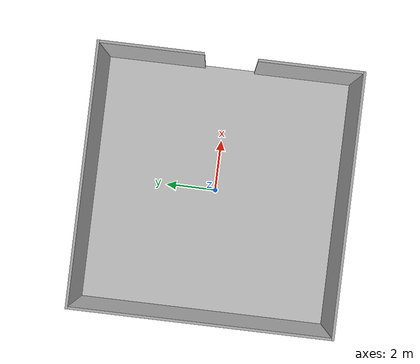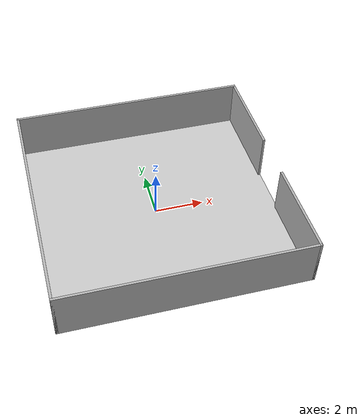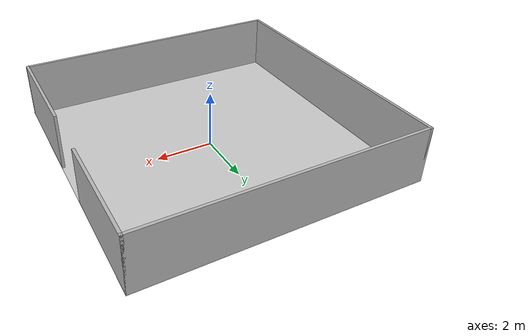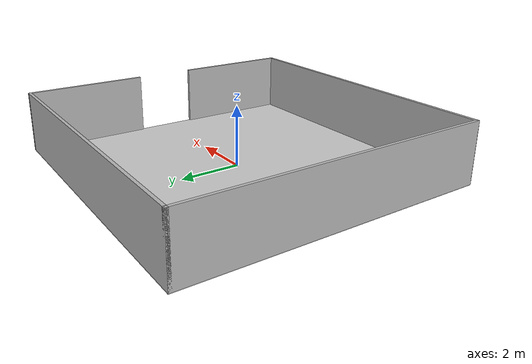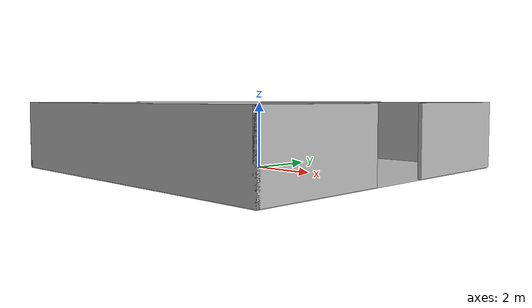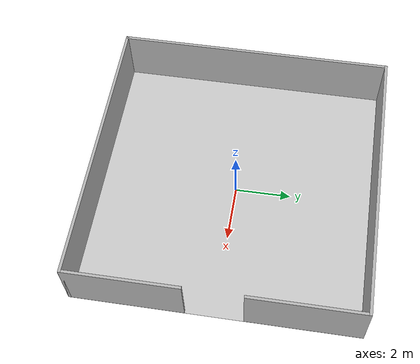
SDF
<?xml version="1.0" ?>
<sdf version="1.6">
  <model name="icy_exterior">

    <static>true</static>

    <link name="floor">
      <collision name="floor_col">
        <geometry>
          <plane>
            <normal>0 0 1</normal>
            <size>10 10</size>
          </plane>
        </geometry>
        <surface>
          <contact>
            <collide_bitmask>0xffff</collide_bitmask>
          </contact>
          <friction>
            <ode>
              <mu>100</mu>
              <mu2>50</mu2>
            </ode>
          </friction>
        </surface>
      </collision>
      <visual name="floor_vis">
        <cast_shadows>false</cast_shadows>
        <geometry>
          <plane>
            <normal>0 0 1</normal>
            <size>10 10</size>
          </plane>
        </geometry>
        <material>
          <script>
            <uri>file://media/icy.material</uri>
            <name>Ice</name>
          </script>
        </material>
      </visual>
    </link>

        <!-- Left Wall. -->
    <link name="wall_left">
      <pose>0 -4.95 1 0 0 0</pose>
      <must_be_base_link>true</must_be_base_link>
      <collision name="left_collision">
        <geometry>
          <box>
            <size>10 0.1 2</size>
          </box>
        </geometry>
      </collision>
      <visual name="left_visual">
        <geometry>
          <box>
            <size>10 0.1 2</size>
          </box>
        </geometry>
        <material>
          <script>
            <uri>file://media/icy.material</uri>
            <name>Ice</name>
          </script>
        </material>
      </visual>
    </link>

    <!-- Right wall. -->
    <link name="wall_right">
      <pose>0 4.95 1 0 0 0</pose>
      <must_be_base_link>true</must_be_base_link>
      <collision name="right_collision">
        <geometry>
          <box>
            <size>10 0.1 2</size>
          </box>
        </geometry>
      </collision>
      <visual name="right_visual">
        <geometry>
          <box>
            <size>10 0.1 2</size>
          </box>
        </geometry>
        <material>
          <script>
            <uri>file://media/icy.material</uri>
            <name>Ice</name>
          </script>
        </material>
      </visual>
    </link>

    <!-- Back wall. -->
    <link name="wall_back">
      <pose>-4.95 0 1 0 0 0</pose>
      <must_be_base_link>true</must_be_base_link>
      <collision name="back_collision">
        <geometry>
          <box>
            <size>0.1 10 2</size>
          </box>
        </geometry>
      </collision>
      <visual name="back_visual">
        <geometry>
          <box>
            <size>0.1 10 2</size>
          </box>
        </geometry>
        <material>
          <script>
            <uri>file://media/icy.material</uri>
            <name>Ice</name>
          </script>
        </material>
      </visual>
    </link>

    <!-- Front wall, left half -->
    <link name="wall_front_left">
      <pose>4.95 0 1 0 0 0</pose>
      <must_be_base_link>true</must_be_base_link>
      <collision name="front_left_collision">
        <pose>0 -3 0 0 0 0</pose>
        <geometry>
          <box>
            <size>0.1 4 2</size>
          </box>
        </geometry>
      </collision>
      <visual name="front_left_visual">
        <pose>0 -3 0 0 0 0</pose>
        <geometry>
          <box>
            <size>0.1 4 2</size>
          </box>
        </geometry>
        <material>
          <script>
            <uri>file://media/icy.material</uri>
            <name>Ice</name>
          </script>
        </material>
      </visual>
    </link>

    <!-- Front wall, right half -->
    <link name="wall_front_right">
      <pose>4.95 0 1 0 0 0</pose>
      <must_be_base_link>true</must_be_base_link>
      <collision name="front_right_collision">
        <pose>0 3 0 0 0 0</pose>
        <geometry>
          <box>
            <size>0.1 4 2</size>
          </box>
        </geometry>
      </collision>
      <visual name="front_right_visual">
        <pose>0 3 0 0 0 0</pose>
        <geometry>
          <box>
            <size>0.1 4 2</size>
          </box>
        </geometry>
        <material>
          <script>
            <uri>file://media/icy.material</uri>
            <name>Ice</name>
          </script>
        </material>
      </visual>
    </link>

  </model>
</sdf>
